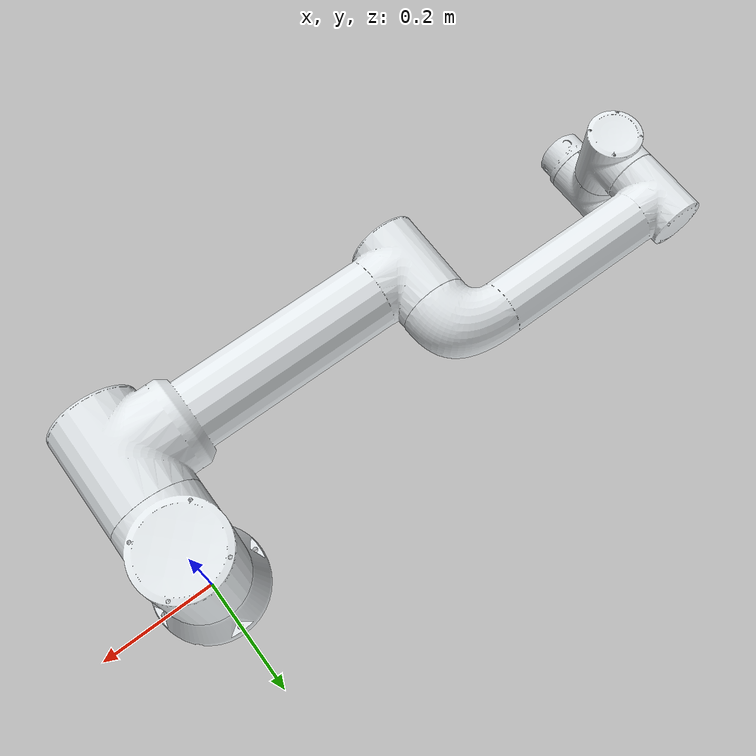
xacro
<?xml version="1.0"?>
<robot xmlns:xacro="http://www.ros.org/wiki/xacro" name="fairino16_v6_robot">
  <xacro:arg name="fairino_file" default="fairino.yaml" />
  <xacro:arg name="hardware_mode" default="real" />

  <!-- Import fairino16_v6_robot urdf file -->
  <xacro:include filename="$(find fairino_description)/urdf/fairino16_v6.urdf" />

  <!-- Import control_xacro -->
  <xacro:include filename="$(find fairino_description)/urdf/fairino.ros2_control.xacro" />

  <xacro:fairino_ros2_control
    name="fairino_ros2_control"
    fairino_file="$(arg fairino_file)"
    hardware_mode="$(arg hardware_mode)"
  />
</robot>

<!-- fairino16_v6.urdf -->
<robot
  name="fairino16_v6_robot">
  <link
    name="base_link">
    <inertial>
      <origin
        xyz="-0.00017171 -0.00016075 0.041272"
        rpy="0 0 0" />
      <mass
        value="1.6231" />
      <inertia
        ixx="0.0039513"
        ixy="1.1032E-05"
        ixz="-1.0078E-05"
        iyy="0.0039509"
        iyz="-9.408E-06"
        izz="0.0063729" />
    </inertial>
    <visual>
      <origin
        xyz="0 0 0"
        rpy="0 0 0" />
      <geometry>
        <mesh
          filename="package://fairino_description/meshes/fairino16_v6/base_link.STL" />
      </geometry>
      <material
        name="">
        <color
          rgba="0.89804 0.91765 0.92941 1" />
      </material>
    </visual>
    <collision>
      <origin
        xyz="0 0 0"
        rpy="0 0 0" />
      <geometry>
        <mesh
          filename="package://fairino_description/meshes/fairino16_v6/base_link.STL" />
      </geometry>
    </collision>
  </link>
  <link
    name="shoulder_link">
    <inertial>
      <origin
        xyz="-0.0001 -0.02612 0.00404"
        rpy="0 0 0" />
      <mass
        value="11.97" />
      <inertia
        ixx="0.04607471"
        ixy="-0.00001041"
        ixz="-0.00009371"
        iyy="0.03493881"
        iyz="0.00133107"
        izz="0.04467851" />
    </inertial>
    <visual>
      <origin
        xyz="0 0 0"
        rpy="0 0 0" />
      <geometry>
        <mesh
          filename="package://fairino_description/meshes/fairino16_v6/shoulder_link.STL" />
      </geometry>
      <material
        name="">
        <color
          rgba="0.89804 0.91765 0.92941 1" />
      </material>
    </visual>
    <collision>
      <origin
        xyz="0 0 0"
        rpy="0 0 0" />
      <geometry>
        <mesh
          filename="package://fairino_description/meshes/fairino16_v6/shoulder_link.STL" />
      </geometry>
    </collision>
  </link>
  <joint
    name="j1"
    type="revolute">
    <origin
      xyz="0 0 0"
      rpy="0 0 0" />
    <parent
      link="base_link" />
    <child
      link="shoulder_link" />
    <axis
      xyz="0 0 1" />
    <limit
      lower="-3.0543"
      upper="3.0543"
      effort="150"
      velocity="3.15" />
    <calibration
      rising="0"
      falling="0" />
    <dynamics
      damping="0"
      friction="0" />
    <safety_controller
      soft_upper_limit="3.0543261"
      soft_lower_limit="-3.0543261"
      k_position="100.0"
      k_velocity="40.0" />
  </joint>
  <link
    name="upperarm_link">
    <inertial>
      <origin
        xyz="0.3604 0.00001 0.16309"
        rpy="0 0 0" />
      <mass
        value="18.18" />
      <inertia
        ixx="0.06025003"
        ixy="0.00036953"
        ixz="-0.01793051"
        iyy="0.97964166"
        iyz="-0.00005647"
        izz="0.96595344" />
    </inertial>
    <visual>
      <origin
        xyz="0 0 0"
        rpy="0 0 0" />
      <geometry>
        <mesh
          filename="package://fairino_description/meshes/fairino16_v6/upperarm_link.STL" />
      </geometry>
      <material
        name="">
        <color
          rgba="0.89804 0.91765 0.92941 1" />
      </material>
    </visual>
    <collision>
      <origin
        xyz="0 0 0"
        rpy="0 0 0" />
      <geometry>
        <mesh
          filename="package://fairino_description/meshes/fairino16_v6/upperarm_link.STL" />
      </geometry>
    </collision>
  </link>
  <joint
    name="j2"
    type="revolute">
    <origin
      xyz="0 0 0.18"
      rpy="1.5708 0 0" />
    <parent
      link="shoulder_link" />
    <child
      link="upperarm_link" />
    <axis
      xyz="0 0 1" />
    <limit
      lower="-4.6251"
      upper="1.4835"
      effort="150"
      velocity="3.15" />
    <calibration
      rising="0"
      falling="0" />
    <dynamics
      damping="0"
      friction="0" />
    <safety_controller
      soft_upper_limit="3.0543261"
      soft_lower_limit="-3.0543261"
      k_position="100.0"
      k_velocity="40.0" />
  </joint>
  <link
    name="forearm_link">
    <inertial>
      <origin
        xyz="0.13503 0.00012 0.05558"
        rpy="0 0 0" />
      <mass
        value="3.22" />
      <inertia
        ixx="0.00548752"
        ixy="0.00004221"
        ixz="0.00077648"
        iyy="0.08650512"
        iyz="0.0000072"
        izz="0.08588861" />
    </inertial>
    <visual>
      <origin
        xyz="0 0 0"
        rpy="0 0 0" />
      <geometry>
        <mesh
          filename="package://fairino_description/meshes/fairino16_v6/forearm_link.STL" />
      </geometry>
      <material
        name="">
        <color
          rgba="0.89804 0.91765 0.92941 1" />
      </material>
    </visual>
    <collision>
      <origin
        xyz="0 0 0"
        rpy="0 0 0" />
      <geometry>
        <mesh
          filename="package://fairino_description/meshes/fairino16_v6/forearm_link.STL" />
      </geometry>
    </collision>
  </link>
  <joint
    name="j3"
    type="revolute">
    <origin
      xyz="-0.52 0 0"
      rpy="0 0 0" />
    <parent
      link="upperarm_link" />
    <child
      link="forearm_link" />
    <axis
      xyz="0 0 1" />
    <limit
      lower="-2.8274"
      upper="2.8274"
      effort="150"
      velocity="3.15" />
    <calibration
      rising="0"
      falling="0" />
    <dynamics
      damping="0"
      friction="0" />
    <safety_controller
      soft_upper_limit="3.0543261"
      soft_lower_limit="-3.0543261"
      k_position="100.0"
      k_velocity="40.0" />
  </joint>
  <link
    name="wrist1_link">
    <inertial>
      <origin
        xyz="0.00012 -0.003 0.01218"
        rpy="0 0 0" />
      <mass
        value="1.69" />
      <inertia
        ixx="0.00248058"
        ixy="0.00001495"
        ixz="0.00002165"
        iyy="0.00239729"
        iyz="-0.00007228"
        izz="0.00180628" />
    </inertial>
    <visual>
      <origin
        xyz="0 0 0"
        rpy="0 0 0" />
      <geometry>
        <mesh
          filename="package://fairino_description/meshes/fairino16_v6/wrist1_link.STL" />
      </geometry>
      <material
        name="">
        <color
          rgba="0.89804 0.91765 0.92941 1" />
      </material>
    </visual>
    <collision>
      <origin
        xyz="0 0 0"
        rpy="0 0 0" />
      <geometry>
        <mesh
          filename="package://fairino_description/meshes/fairino16_v6/wrist1_link.STL" />
      </geometry>
    </collision>
  </link>
  <joint
    name="j4"
    type="revolute">
    <origin
      xyz="-0.4 0 0"
      rpy="0 0 0" />
    <parent
      link="forearm_link" />
    <child
      link="wrist1_link" />
    <axis
      xyz="0 0 1" />
    <limit
      lower="-4.6251"
      upper="1.4835"
      effort="28"
      velocity="3.2" />
    <calibration
      rising="0"
      falling="0" />
    <dynamics
      damping="0"
      friction="0" />
    <safety_controller
      soft_upper_limit="3.0543261"
      soft_lower_limit="-3.0543261"
      k_position="100.0"
      k_velocity="40.0" />
  </joint>
  <link
    name="wrist2_link">
    <inertial>
      <origin
        xyz="-0.00012 0.003 0.01218"
        rpy="0 0 0" />
      <mass
        value="1.69" />
      <inertia
        ixx="0.00248058"
        ixy="0.00001495"
        ixz="-0.00002165"
        iyy="0.00239729"
        iyz="0.00007228"
        izz="0.00180628" />
    </inertial>
    <visual>
      <origin
        xyz="0 0 0"
        rpy="0 0 0" />
      <geometry>
        <mesh
          filename="package://fairino_description/meshes/fairino16_v6/wrist2_link.STL" />
      </geometry>
      <material
        name="">
        <color
          rgba="0.89804 0.91765 0.92941 1" />
      </material>
    </visual>
    <collision>
      <origin
        xyz="0 0 0"
        rpy="0 0 0" />
      <geometry>
        <mesh
          filename="package://fairino_description/meshes/fairino16_v6/wrist2_link.STL" />
      </geometry>
    </collision>
  </link>
  <joint
    name="j5"
    type="revolute">
    <origin
      xyz="0 0 0.159"
      rpy="1.5708 0 0" />
    <parent
      link="wrist1_link" />
    <child
      link="wrist2_link" />
    <axis
      xyz="0 0 1" />
    <limit
      lower="-3.0543"
      upper="3.0543"
      effort="28"
      velocity="3.2" />
    <calibration
      rising="0"
      falling="0" />
    <dynamics
      damping="0"
      friction="0" />
    <safety_controller
      soft_upper_limit="3.0543261"
      soft_lower_limit="-3.0543261"
      k_position="100.0"
      k_velocity="40.0" />
  </joint>
  <link
    name="wrist3_link">
    <inertial>
      <origin
        xyz="0.00124 0.00085 -0.02034"
        rpy="0 0 0" />
      <mass
        value="0.35" />
      <inertia
        ixx="0.00023661"
        ixy="-0.00000085"
        ixz="0.00000092"
        iyy="0.00023501"
        iyz="-0.00000154"
        izz="0.00036972" />
    </inertial>
    <visual>
      <origin
        xyz="0 0 0"
        rpy="0 0 0" />
      <geometry>
        <mesh
          filename="package://fairino_description/meshes/fairino16_v6/wrist3_link.STL" />
      </geometry>
      <material
        name="">
        <color
          rgba="0.89804 0.91765 0.92941 1" />
      </material>
    </visual>
    <collision>
      <origin
        xyz="0 0 0"
        rpy="0 0 0" />
      <geometry>
        <mesh
          filename="package://fairino_description/meshes/fairino16_v6/wrist3_link.STL" />
      </geometry>
    </collision>
  </link>
  <joint
    name="j6"
    type="revolute">
    <origin
      xyz="0 0 0.114"
      rpy="-1.5708 0 0" />
    <parent
      link="wrist2_link" />
    <child
      link="wrist3_link" />
    <axis
      xyz="0 0 1" />
    <limit
      lower="-3.0543"
      upper="3.0543"
      effort="28"
      velocity="3.2" />
    <calibration
      rising="0"
      falling="0" />
    <dynamics
      damping="0"
      friction="0" />
    <safety_controller
      soft_upper_limit="3.0543261"
      soft_lower_limit="-3.0543261"
      k_position="100.0"
      k_velocity="40.0" />
  </joint>
</robot>
